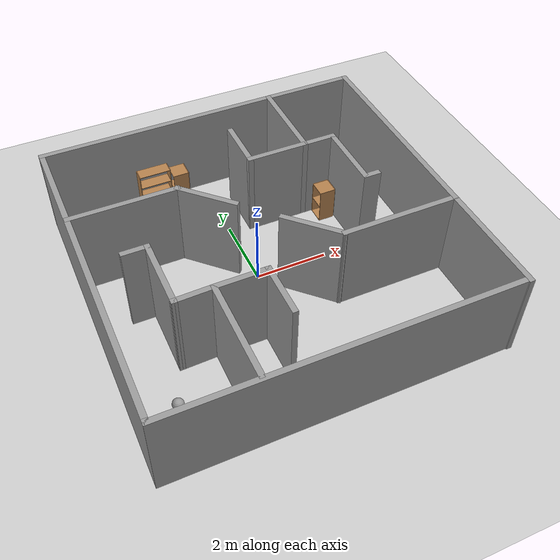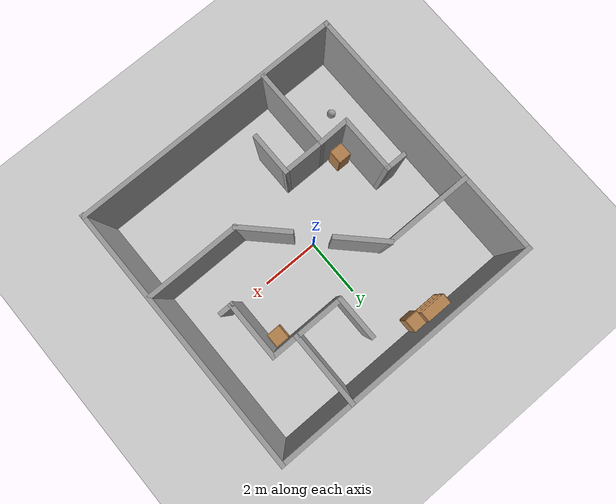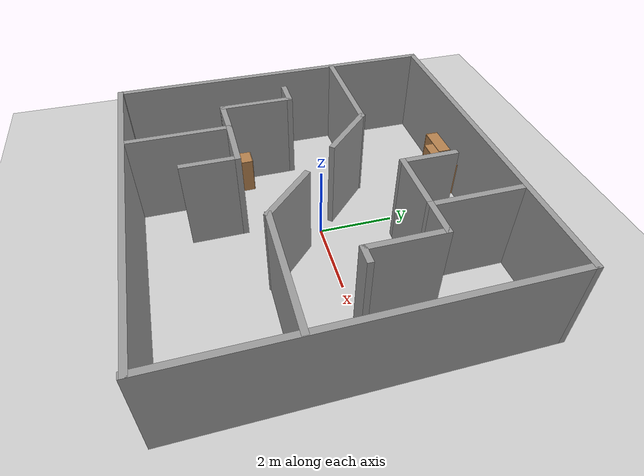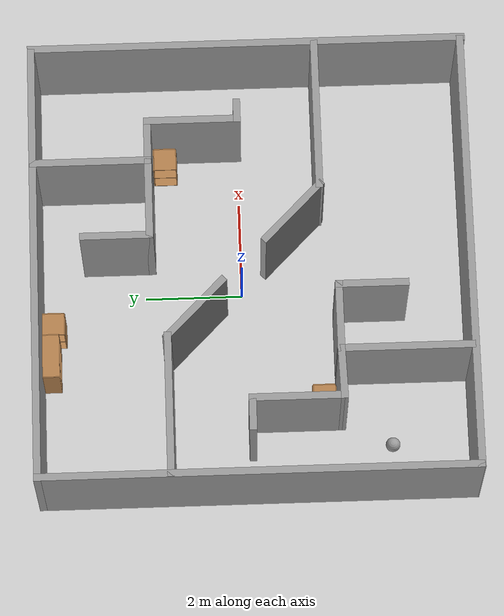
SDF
<sdf version="1.6">
 <world name="default">
  <light name="sun" type="directional">
   <pose>0 0 10 0 -0 0</pose>
   <diffuse>0.8 0.8 0.8 1</diffuse>
   <specular>0.2 0.2 0.2 1</specular>
   <attenuation>
    <range>1000</range>
    <constant>0.9</constant>
    <linear>0.01</linear>
    <quadratic>0.001</quadratic>
   </attenuation>
   <direction>-0.5 0.1 -0.9</direction>
  </light>
  <model name="ground_plane">
   <static>1</static>
   <link name="link">
    <collision name="collision">
     <geometry><plane><normal>0 0 1</normal><size>100 100</size></plane></geometry>
     <surface>
      <contact><collide_bitmask>65535</collide_bitmask></contact>
      <friction><ode><mu>100</mu><mu2>50</mu2></ode></friction>
     </surface>
    </collision>
    <visual name="visual">
     <cast_shadows>0</cast_shadows>
     <geometry><plane><normal>0 0 1</normal><size>100 100</size></plane></geometry>
     <material>
      <script><uri>file://media/materials/scripts/gazebo.material</uri><name>Gazebo/Grey</name></script>
     </material>
    </visual>
   </link>
  </model>
  <gravity>0 0 -9.8</gravity>
  <magnetic_field>6e-06 2.3e-05 -4.2e-05</magnetic_field>
  <atmosphere type="adiabatic"/>
  <physics name="default_physics" default="0" type="ode">
   <max_step_size>0.001</max_step_size>
   <real_time_factor>1</real_time_factor>
   <real_time_update_rate>1000</real_time_update_rate>
  </physics>
  <scene><ambient>0.4 0.4 0.4 1</ambient><background>0.7 0.7 0.7 1</background><shadows>1</shadows></scene>
  <audio><device>default</device></audio>
  <spherical_coordinates>
   <surface_model>EARTH_WGS84</surface_model>
   <latitude_deg>0</latitude_deg>
   <longitude_deg>0</longitude_deg>
   <elevation>0</elevation>
   <heading_deg>0</heading_deg>
  </spherical_coordinates>
  <model name="indoor_2">
   <pose>0.161324 -0.233655 0 0 -0 0</pose>
   <link name="Wall_34">
    <collision name="Wall_34_Collision">
     <geometry><box><size>9.25 0.15 2.5</size></box></geometry>
     <pose>0 0 1.25 0 -0 0</pose>
    </collision>
    <visual name="Wall_34_Visual">
     <pose>0 0 1.25 0 -0 0</pose>
     <geometry><box><size>9.25 0.15 2.5</size></box></geometry>
     <material>
      <script><uri>file://media/materials/scripts/gazebo.material</uri><name>Gazebo/Grey</name></script>
      <ambient>1 1 1 1</ambient>
     </material>
     <meta><layer>0</layer></meta>
    </visual>
    <pose>0 -4.4197 0 0 -0 0</pose>
   </link>
   <link name="Wall_35">
    <collision name="Wall_35_Collision">
     <geometry><box><size>9.0426 0.15 2.5</size></box></geometry>
     <pose>0 0 1.25 0 -0 0</pose>
    </collision>
    <visual name="Wall_35_Visual">
     <pose>0 0 1.25 0 -0 0</pose>
     <geometry><box><size>9.0426 0.15 2.5</size></box></geometry>
     <material>
      <script><uri>file://media/materials/scripts/gazebo.material</uri><name>Gazebo/Grey</name></script>
      <ambient>1 1 1 1</ambient>
     </material>
     <meta><layer>0</layer></meta>
    </visual>
    <pose>4.55 0 0 0 -0 1.5708</pose>
   </link>
   <link name="Wall_36">
    <collision name="Wall_36_Collision">
     <geometry><box><size>9.25 0.15 2.5</size></box></geometry>
     <pose>0 0 1.25 0 -0 0</pose>
    </collision>
    <visual name="Wall_36_Visual">
     <pose>0 0 1.25 0 -0 0</pose>
     <geometry><box><size>9.25 0.15 2.5</size></box></geometry>
     <material>
      <script><uri>file://media/materials/scripts/gazebo.material</uri><name>Gazebo/Grey</name></script>
      <ambient>1 1 1 1</ambient>
     </material>
     <meta><layer>0</layer></meta>
    </visual>
    <pose>0 4.4463 0 0 -0 3.14159</pose>
   </link>
   <link name="Wall_37">
    <collision name="Wall_37_Collision">
     <geometry><box><size>9 0.15 2.5</size></box></geometry>
     <pose>0 0 1.25 0 -0 0</pose>
    </collision>
    <visual name="Wall_37_Visual">
     <pose>0 0 1.25 0 -0 0</pose>
     <geometry><box><size>9 0.15 2.5</size></box></geometry>
     <material>
      <script><uri>file://media/materials/scripts/gazebo.material</uri><name>Gazebo/Grey</name></script>
      <ambient>1 1 1 1</ambient>
     </material>
     <meta><layer>0</layer></meta>
    </visual>
    <pose>-4.55 0.021301 0 0 -0 -1.5708</pose>
   </link>
   <link name="Wall_38">
    <collision name="Wall_38_Collision">
     <geometry><box><size>0.15 0.15 2.5</size></box></geometry>
     <pose>0 0 1.25 0 -0 0</pose>
    </collision>
    <visual name="Wall_38_Visual">
     <pose>0 0 1.25 0 -0 0</pose>
     <geometry><box><size>0.15 0.15 2.5</size></box></geometry>
     <material>
      <script><uri>file://media/materials/scripts/gazebo.material</uri><name>Gazebo/Grey</name></script>
      <ambient>1 1 1 1</ambient>
     </material>
     <meta><layer>0</layer></meta>
    </visual>
    <pose>-4.55 -4.4037 0 0 -0 0</pose>
   </link>
   <link name="Wall_40">
    <collision name="Wall_40_Collision">
     <geometry><box><size>2.5 0.15 2.5</size></box></geometry>
     <pose>0 0 1.25 0 -0 0</pose>
    </collision>
    <visual name="Wall_40_Visual">
     <pose>0 0 1.25 0 -0 0</pose>
     <geometry><box><size>2.5 0.15 2.5</size></box></geometry>
     <material>
      <script><uri>file://media/materials/scripts/gazebo.material</uri><name>Gazebo/Grey</name></script>
      <ambient>1 1 1 1</ambient>
     </material>
     <meta><layer>0</layer></meta>
    </visual>
    <pose>2.05745 3.26316 0 0 -0 -1.5708</pose>
   </link>
   <link name="Wall_41">
    <collision name="Wall_41_Collision">
     <geometry><box><size>1 0.15 2.5</size></box></geometry>
     <pose>0 0 1.25 0 -0 0</pose>
    </collision>
    <visual name="Wall_41_Visual">
     <pose>0 0 1.25 0 -0 0</pose>
     <geometry><box><size>1 0.15 2.5</size></box></geometry>
     <material>
      <script><uri>file://media/materials/scripts/gazebo.material</uri><name>Gazebo/Grey</name></script>
      <ambient>1 1 1 1</ambient>
     </material>
     <meta><layer>0</layer></meta>
    </visual>
    <pose>2.48245 2.08817 0 0 -0 0</pose>
   </link>
   <link name="Wall_42">
    <collision name="Wall_42_Collision">
     <geometry><box><size>2 0.15 2.5</size></box></geometry>
     <pose>0 0 1.25 0 -0 0</pose>
    </collision>
    <visual name="Wall_42_Visual">
     <pose>0 0 1.25 0 -0 0</pose>
     <geometry><box><size>2 0.15 2.5</size></box></geometry>
     <material>
      <script><uri>file://media/materials/scripts/gazebo.material</uri><name>Gazebo/Grey</name></script>
      <ambient>1 1 1 1</ambient>
     </material>
     <meta><layer>0</layer></meta>
    </visual>
    <pose>2.90745 1.16317 0 0 -0 -1.5708</pose>
   </link>
   <link name="Wall_43">
    <collision name="Wall_43_Collision">
     <geometry><box><size>0.5 0.15 2.5</size></box></geometry>
     <pose>0 0 1.25 0 -0 0</pose>
    </collision>
    <visual name="Wall_43_Visual">
     <pose>0 0 1.25 0 -0 0</pose>
     <geometry><box><size>0.5 0.15 2.5</size></box></geometry>
     <material>
      <script><uri>file://media/materials/scripts/gazebo.material</uri><name>Gazebo/Grey</name></script>
      <ambient>1 1 1 1</ambient>
     </material>
     <meta><layer>0</layer></meta>
    </visual>
    <pose>3.08245 0.238165 0 0 -0 0</pose>
   </link>
   <link name="Wall_45">
    <collision name="Wall_45_Collision">
     <geometry><box><size>1.75 0.15 2.5</size></box></geometry>
     <pose>0 0 1.25 0 -0 0</pose>
    </collision>
    <visual name="Wall_45_Visual">
     <pose>0 0 1.25 0 -0 0</pose>
     <geometry><box><size>1.75 0.15 2.5</size></box></geometry>
     <material>
      <script><uri>file://media/materials/scripts/gazebo.material</uri><name>Gazebo/Grey</name></script>
      <ambient>1 1 1 1</ambient>
     </material>
     <meta><layer>0</layer></meta>
    </visual>
    <pose>1.25745 2.08817 0 0 -0 3.14159</pose>
   </link>
   <link name="Wall_46">
    <collision name="Wall_46_Collision">
     <geometry><box><size>1.5 0.15 2.5</size></box></geometry>
     <pose>0 0 1.25 0 -0 0</pose>
    </collision>
    <visual name="Wall_46_Visual">
     <pose>0 0 1.25 0 -0 0</pose>
     <geometry><box><size>1.5 0.15 2.5</size></box></geometry>
     <material>
      <script><uri>file://media/materials/scripts/gazebo.material</uri><name>Gazebo/Grey</name></script>
      <ambient>1 1 1 1</ambient>
     </material>
     <meta><layer>0</layer></meta>
    </visual>
    <pose>0.457448 2.76316 0 0 -0 1.5708</pose>
   </link>
   <link name="Wall_48">
    <collision name="Wall_48_Collision">
     <geometry><box><size>2.75 0.15 2.5</size></box></geometry>
     <pose>0 0 1.25 0 -0 0</pose>
    </collision>
    <visual name="Wall_48_Visual">
     <pose>0 0 1.25 0 -0 0</pose>
     <geometry><box><size>2.75 0.15 2.5</size></box></geometry>
     <material>
      <script><uri>file://media/materials/scripts/gazebo.material</uri><name>Gazebo/Grey</name></script>
      <ambient>1 1 1 1</ambient>
     </material>
     <meta><layer>0</layer></meta>
    </visual>
    <pose>-2.06558 -3.0399 0 0 -0 1.5708</pose>
   </link>
   <link name="Wall_49">
    <collision name="Wall_49_Collision">
     <geometry><box><size>1.12277 0.15 2.5</size></box></geometry>
     <pose>0 0 1.25 0 -0 0</pose>
    </collision>
    <visual name="Wall_49_Visual">
     <pose>0 0 1.25 0 -0 0</pose>
     <geometry><box><size>1.12277 0.15 2.5</size></box></geometry>
     <material>
      <script><uri>file://media/materials/scripts/gazebo.material</uri><name>Gazebo/Grey</name></script>
      <ambient>1 1 1 1</ambient>
     </material>
     <meta><layer>0</layer></meta>
    </visual>
    <pose>-2.55179 -1.7266 0 0 -0 -3.11424</pose>
   </link>
   <link name="Wall_50">
    <collision name="Wall_50_Collision">
     <geometry><box><size>2 0.15 2.5</size></box></geometry>
     <pose>0 0 1.25 0 -0 0</pose>
    </collision>
    <visual name="Wall_50_Visual">
     <pose>0 0 1.25 0 -0 0</pose>
     <geometry><box><size>2 0.15 2.5</size></box></geometry>
     <material>
      <script><uri>file://media/materials/scripts/gazebo.material</uri><name>Gazebo/Grey</name></script>
      <ambient>1 1 1 1</ambient>
     </material>
     <meta><layer>0</layer></meta>
    </visual>
    <pose>-3.03799 -0.8149 0 0 -0 1.5708</pose>
   </link>
   <link name="Wall_51">
    <collision name="Wall_51_Collision">
     <geometry><box><size>0.75 0.15 2.5</size></box></geometry>
     <pose>0 0 1.25 0 -0 0</pose>
    </collision>
    <visual name="Wall_51_Visual">
     <pose>0 0 1.25 0 -0 0</pose>
     <geometry><box><size>0.75 0.15 2.5</size></box></geometry>
     <material>
      <script><uri>file://media/materials/scripts/gazebo.material</uri><name>Gazebo/Grey</name></script>
      <ambient>1 1 1 1</ambient>
     </material>
     <meta><layer>0</layer></meta>
    </visual>
    <pose>-3.33799 0.1101 0 0 -0 3.14159</pose>
   </link>
   <link name="Wall_53">
    <collision name="Wall_53_Collision">
     <geometry><box><size>3 0.15 2.5</size></box></geometry>
     <pose>0 0 1.25 0 -0 0</pose>
    </collision>
    <visual name="Wall_53_Visual">
     <pose>0 0 1.25 0 -0 0</pose>
     <geometry><box><size>3 0.15 2.5</size></box></geometry>
     <material>
      <script><uri>file://media/materials/scripts/gazebo.material</uri><name>Gazebo/Grey</name></script>
      <ambient>1 1 1 1</ambient>
     </material>
     <meta><layer>0</layer></meta>
    </visual>
    <pose>-3.1144 1.77815 0 0 -0 0</pose>
   </link>
   <link name="Wall_54">
    <collision name="Wall_54_Collision">
     <geometry><box><size>1.75 0.15 2.5</size></box></geometry>
     <pose>0 0 1.25 0 -0 0</pose>
    </collision>
    <visual name="Wall_54_Visual">
     <pose>0 0 1.25 0 -0 0</pose>
     <geometry><box><size>1.75 0.15 2.5</size></box></geometry>
     <material>
      <script><uri>file://media/materials/scripts/gazebo.material</uri><name>Gazebo/Grey</name></script>
      <ambient>1 1 1 1</ambient>
     </material>
     <meta><layer>0</layer></meta>
    </visual>
    <pose>-1.12372 1.21246 0 0 -0 -0.785398</pose>
   </link>
   <link name="Wall_56">
    <collision name="Wall_56_Collision">
     <geometry><box><size>1.75 0.15 2.5</size></box></geometry>
     <pose>0 0 1.25 0 -0 0</pose>
    </collision>
    <visual name="Wall_56_Visual">
     <pose>0 0 1.25 0 -0 0</pose>
     <geometry><box><size>1.75 0.15 2.5</size></box></geometry>
     <material>
      <script><uri>file://media/materials/scripts/gazebo.material</uri><name>Gazebo/Grey</name></script>
      <ambient>1 1 1 1</ambient>
     </material>
     <meta><layer>0</layer></meta>
    </visual>
    <pose>0.86752 -0.835755 0 0 -0 -0.785398</pose>
   </link>
   <link name="Wall_57">
    <collision name="Wall_57_Collision">
     <geometry><box><size>3.25 0.15 2.5</size></box></geometry>
     <pose>0 0 1.25 0 -0 0</pose>
    </collision>
    <visual name="Wall_57_Visual">
     <pose>0 0 1.25 0 -0 0</pose>
     <geometry><box><size>3.25 0.15 2.5</size></box></geometry>
     <material>
      <script><uri>file://media/materials/scripts/gazebo.material</uri><name>Gazebo/Grey</name></script>
      <ambient>1 1 1 1</ambient>
     </material>
     <meta><layer>0</layer></meta>
    </visual>
    <pose>2.9832 -1.40144 0 0 -0 0</pose>
   </link>
   <link name="Wall_59">
    <collision name="Wall_59_Collision">
     <geometry><box><size>1.5 0.15 2.5</size></box></geometry>
     <pose>0 0 1.25 0 -0 0</pose>
    </collision>
    <visual name="Wall_59_Visual">
     <pose>0 0 1.25 0 -0 0</pose>
     <geometry><box><size>1.5 0.15 2.5</size></box></geometry>
     <material>
      <script><uri>file://media/materials/scripts/gazebo.material</uri><name>Gazebo/Grey</name></script>
      <ambient>1 1 1 1</ambient>
     </material>
     <meta><layer>0</layer></meta>
    </visual>
    <pose>-1.39058 -1.7133 0 0 -0 0</pose>
   </link>
   <link name="Wall_60">
    <collision name="Wall_60_Collision">
     <geometry><box><size>1.5 0.15 2.5</size></box></geometry>
     <pose>0 0 1.25 0 -0 0</pose>
    </collision>
    <visual name="Wall_60_Visual">
     <pose>0 0 1.25 0 -0 0</pose>
     <geometry><box><size>1.5 0.15 2.5</size></box></geometry>
     <material>
      <script><uri>file://media/materials/scripts/gazebo.material</uri><name>Gazebo/Grey</name></script>
      <ambient>1 1 1 1</ambient>
     </material>
     <meta><layer>0</layer></meta>
    </visual>
    <pose>-0.715583 -2.3883 0 0 -0 -1.5708</pose>
   </link>
   <static>1</static>
  </model>
  <model name="bookshelf">
   <static>1</static>
   <link name="link">
    <inertial><mass>1</mass></inertial>
    <collision name="back">
     <pose>0 0.005 0.6 0 -0 0</pose>
     <geometry><box><size>0.9 0.01 1.2</size></box></geometry>
    </collision>
    <visual name="visual1">
     <pose>0 0.005 0.6 0 -0 0</pose>
     <geometry><box><size>0.9 0.01 1.2</size></box></geometry>
     <material>
      <script><uri>file://media/materials/scripts/gazebo.material</uri><name>Gazebo/Wood</name></script>
     </material>
    </visual>
    <collision name="left_side">
     <pose>0.45 -0.195 0.6 0 -0 0</pose>
     <geometry><box><size>0.02 0.4 1.2</size></box></geometry>
    </collision>
    <visual name="visual2">
     <pose>0.45 -0.195 0.6 0 -0 0</pose>
     <geometry><box><size>0.02 0.4 1.2</size></box></geometry>
     <material>
      <script><uri>file://media/materials/scripts/gazebo.material</uri><name>Gazebo/Wood</name></script>
     </material>
    </visual>
    <collision name="right_side">
     <pose>-0.45 -0.195 0.6 0 -0 0</pose>
     <geometry><box><size>0.02 0.4 1.2</size></box></geometry>
    </collision>
    <visual name="visual3">
     <pose>-0.45 -0.195 0.6 0 -0 0</pose>
     <geometry><box><size>0.02 0.4 1.2</size></box></geometry>
     <material>
      <script><uri>file://media/materials/scripts/gazebo.material</uri><name>Gazebo/Wood</name></script>
     </material>
    </visual>
    <collision name="bottom">
     <pose>0 -0.195 0.03 0 -0 0</pose>
     <geometry><box><size>0.88 0.4 0.06</size></box></geometry>
    </collision>
    <visual name="visual4">
     <pose>0 -0.195 0.03 0 -0 0</pose>
     <geometry><box><size>0.88 0.4 0.06</size></box></geometry>
     <material>
      <script><uri>file://media/materials/scripts/gazebo.material</uri><name>Gazebo/Wood</name></script>
     </material>
    </visual>
    <collision name="top">
     <pose>0 -0.195 1.19 0 -0 0</pose>
     <geometry><box><size>0.88 0.4 0.02</size></box></geometry>
    </collision>
    <visual name="visual5">
     <pose>0 -0.195 1.19 0 -0 0</pose>
     <geometry><box><size>0.88 0.4 0.02</size></box></geometry>
     <material>
      <script><uri>file://media/materials/scripts/gazebo.material</uri><name>Gazebo/Wood</name></script>
     </material>
    </visual>
    <collision name="low_shelf">
     <pose>0 -0.195 0.43 0 -0 0</pose>
     <geometry><box><size>0.88 0.4 0.02</size></box></geometry>
    </collision>
    <visual name="visual6">
     <pose>0 -0.195 0.43 0 -0 0</pose>
     <geometry><box><size>0.88 0.4 0.02</size></box></geometry>
     <material>
      <script><uri>file://media/materials/scripts/gazebo.material</uri><name>Gazebo/Wood</name></script>
     </material>
    </visual>
    <collision name="high_shelf">
     <pose>0 -0.195 0.8 0 -0 0</pose>
     <geometry><box><size>0.88 0.4 0.02</size></box></geometry>
    </collision>
    <visual name="visual7">
     <pose>0 -0.195 0.8 0 -0 0</pose>
     <geometry><box><size>0.88 0.4 0.02</size></box></geometry>
     <material>
      <script><uri>file://media/materials/scripts/gazebo.material</uri><name>Gazebo/Wood</name></script>
     </material>
    </visual>
   </link>
   <pose>-1.50439 4.18498 0 0 -0 0</pose>
  </model>
  <model name="cabinet">
   <static>1</static>
   <link name="cabinet_bottom_plate">
    <inertial>
     <pose>0 0 -1 0 -0 0</pose>
     <inertia><ixx>2.05</ixx><ixy>0</ixy><ixz>0</ixz><iyy>2.05</iyy><iyz>0</iyz><izz>2.05</izz></inertia>
     <mass>25</mass>
    </inertial>
    <collision name="cabinet_bottom_plate_geom">
     <pose>0 0 0.01 0 -0 0</pose>
     <geometry><box><size>0.45 0.45 0.02</size></box></geometry>
    </collision>
    <visual name="cabinet_bottom_plate_geom_visual">
     <pose>0 0 0.01 0 -0 0</pose>
     <geometry><box><size>0.45 0.45 0.02</size></box></geometry>
     <material>
      <script><uri>file://media/materials/scripts/gazebo.material</uri><name>Gazebo/Wood</name></script>
     </material>
    </visual>
    <collision name="cabinet_bottom_plate_geom_cabinet_back_plate">
     <pose>0.235 0 0.51 0 -0 0</pose>
     <geometry><box><size>0.02 0.45 1.02</size></box></geometry>
    </collision>
    <visual name="cabinet_bottom_plate_geom_cabinet_back_plate_visual">
     <pose>0.235 0 0.51 0 -0 0</pose>
     <geometry><box><size>0.02 0.45 1.02</size></box></geometry>
     <material>
      <script><uri>file://media/materials/scripts/gazebo.material</uri><name>Gazebo/Wood</name></script>
     </material>
    </visual>
    <collision name="cabinet_bottom_plate_geom_cabinet_left_plate">
     <pose>0 0.235 0.51 0 -0 0</pose>
     <geometry><box><size>0.45 0.02 1.02</size></box></geometry>
    </collision>
    <visual name="cabinet_bottom_plate_geom_cabinet_left_plate_visual">
     <pose>0 0.235 0.51 0 -0 0</pose>
     <geometry><box><size>0.45 0.02 1.02</size></box></geometry>
     <material>
      <script><uri>file://media/materials/scripts/gazebo.material</uri><name>Gazebo/Wood</name></script>
     </material>
    </visual>
    <collision name="cabinet_bottom_plate_geom_cabinet_middle_plate">
     <pose>0 0 0.51 0 -0 0</pose>
     <geometry><box><size>0.45 0.45 0.02</size></box></geometry>
    </collision>
    <visual name="cabinet_bottom_plate_geom_cabinet_middle_plate_visual">
     <pose>0 0 0.51 0 -0 0</pose>
     <geometry><box><size>0.45 0.45 0.02</size></box></geometry>
     <material>
      <script><uri>file://media/materials/scripts/gazebo.material</uri><name>Gazebo/Wood</name></script>
     </material>
    </visual>
    <collision name="cabinet_bottom_plate_geom_cabinet_right_plate">
     <pose>0 -0.235 0.51 0 -0 0</pose>
     <geometry><box><size>0.45 0.02 1.02</size></box></geometry>
    </collision>
    <visual name="cabinet_bottom_plate_geom_cabinet_right_plate_visual">
     <pose>0 -0.235 0.51 0 -0 0</pose>
     <geometry><box><size>0.45 0.02 1.02</size></box></geometry>
     <material>
      <script><uri>file://media/materials/scripts/gazebo.material</uri><name>Gazebo/Wood</name></script>
     </material>
    </visual>
    <collision name="cabinet_bottom_plate_geom_cabinet_top_plate">
     <pose>0 0 1.01 0 -0 0</pose>
     <geometry><box><size>0.45 0.45 0.02</size></box></geometry>
    </collision>
    <visual name="cabinet_bottom_plate_geom_cabinet_top_plate_visual">
     <pose>0 0 1.01 0 -0 0</pose>
     <geometry><box><size>0.45 0.45 0.02</size></box></geometry>
     <material>
      <script><uri>file://media/materials/scripts/gazebo.material</uri><name>Gazebo/Wood</name></script>
     </material>
    </visual>
   </link>
   <pose>-0.784053 3.91345 0 0 -0 0</pose>
  </model>
  <model name="cabinet_0">
   <static>1</static>
   <link name="cabinet_bottom_plate">
    <inertial>
     <pose>0 0 -1 0 -0 0</pose>
     <inertia><ixx>2.05</ixx><ixy>0</ixy><ixz>0</ixz><iyy>2.05</iyy><iyz>0</iyz><izz>2.05</izz></inertia>
     <mass>25</mass>
    </inertial>
    <collision name="cabinet_bottom_plate_geom">
     <pose>0 0 0.01 0 -0 0</pose>
     <geometry><box><size>0.45 0.45 0.02</size></box></geometry>
    </collision>
    <visual name="cabinet_bottom_plate_geom_visual">
     <pose>0 0 0.01 0 -0 0</pose>
     <geometry><box><size>0.45 0.45 0.02</size></box></geometry>
     <material>
      <script><uri>file://media/materials/scripts/gazebo.material</uri><name>Gazebo/Wood</name></script>
     </material>
    </visual>
    <collision name="cabinet_bottom_plate_geom_cabinet_back_plate">
     <pose>0.235 0 0.51 0 -0 0</pose>
     <geometry><box><size>0.02 0.45 1.02</size></box></geometry>
    </collision>
    <visual name="cabinet_bottom_plate_geom_cabinet_back_plate_visual">
     <pose>0.235 0 0.51 0 -0 0</pose>
     <geometry><box><size>0.02 0.45 1.02</size></box></geometry>
     <material>
      <script><uri>file://media/materials/scripts/gazebo.material</uri><name>Gazebo/Wood</name></script>
     </material>
    </visual>
    <collision name="cabinet_bottom_plate_geom_cabinet_left_plate">
     <pose>0 0.235 0.51 0 -0 0</pose>
     <geometry><box><size>0.45 0.02 1.02</size></box></geometry>
    </collision>
    <visual name="cabinet_bottom_plate_geom_cabinet_left_plate_visual">
     <pose>0 0.235 0.51 0 -0 0</pose>
     <geometry><box><size>0.45 0.02 1.02</size></box></geometry>
     <material>
      <script><uri>file://media/materials/scripts/gazebo.material</uri><name>Gazebo/Wood</name></script>
     </material>
    </visual>
    <collision name="cabinet_bottom_plate_geom_cabinet_middle_plate">
     <pose>0 0 0.51 0 -0 0</pose>
     <geometry><box><size>0.45 0.45 0.02</size></box></geometry>
    </collision>
    <visual name="cabinet_bottom_plate_geom_cabinet_middle_plate_visual">
     <pose>0 0 0.51 0 -0 0</pose>
     <geometry><box><size>0.45 0.45 0.02</size></box></geometry>
     <material>
      <script><uri>file://media/materials/scripts/gazebo.material</uri><name>Gazebo/Wood</name></script>
     </material>
    </visual>
    <collision name="cabinet_bottom_plate_geom_cabinet_right_plate">
     <pose>0 -0.235 0.51 0 -0 0</pose>
     <geometry><box><size>0.45 0.02 1.02</size></box></geometry>
    </collision>
    <visual name="cabinet_bottom_plate_geom_cabinet_right_plate_visual">
     <pose>0 -0.235 0.51 0 -0 0</pose>
     <geometry><box><size>0.45 0.02 1.02</size></box></geometry>
     <material>
      <script><uri>file://media/materials/scripts/gazebo.material</uri><name>Gazebo/Wood</name></script>
     </material>
    </visual>
    <collision name="cabinet_bottom_plate_geom_cabinet_top_plate">
     <pose>0 0 1.01 0 -0 0</pose>
     <geometry><box><size>0.45 0.45 0.02</size></box></geometry>
    </collision>
    <visual name="cabinet_bottom_plate_geom_cabinet_top_plate_visual">
     <pose>0 0 1.01 0 -0 0</pose>
     <geometry><box><size>0.45 0.45 0.02</size></box></geometry>
     <material>
      <script><uri>file://media/materials/scripts/gazebo.material</uri><name>Gazebo/Wood</name></script>
     </material>
    </visual>
   </link>
   <pose>2.72973 1.52679 0 0 -0 0</pose>
  </model>
  <model name="cabinet_1">
   <static>1</static>
   <link name="cabinet_bottom_plate">
    <inertial>
     <pose>0 0 -1 0 -0 0</pose>
     <inertia><ixx>2.05</ixx><ixy>0</ixy><ixz>0</ixz><iyy>2.05</iyy><iyz>0</iyz><izz>2.05</izz></inertia>
     <mass>25</mass>
    </inertial>
    <collision name="cabinet_bottom_plate_geom">
     <pose>0 0 0.01 0 -0 0</pose>
     <geometry><box><size>0.45 0.45 0.02</size></box></geometry>
    </collision>
    <visual name="cabinet_bottom_plate_geom_visual">
     <pose>0 0 0.01 0 -0 0</pose>
     <geometry><box><size>0.45 0.45 0.02</size></box></geometry>
     <material>
      <script><uri>file://media/materials/scripts/gazebo.material</uri><name>Gazebo/Wood</name></script>
     </material>
    </visual>
    <collision name="cabinet_bottom_plate_geom_cabinet_back_plate">
     <pose>0.235 0 0.51 0 -0 0</pose>
     <geometry><box><size>0.02 0.45 1.02</size></box></geometry>
    </collision>
    <visual name="cabinet_bottom_plate_geom_cabinet_back_plate_visual">
     <pose>0.235 0 0.51 0 -0 0</pose>
     <geometry><box><size>0.02 0.45 1.02</size></box></geometry>
     <material>
      <script><uri>file://media/materials/scripts/gazebo.material</uri><name>Gazebo/Wood</name></script>
     </material>
    </visual>
    <collision name="cabinet_bottom_plate_geom_cabinet_left_plate">
     <pose>0 0.235 0.51 0 -0 0</pose>
     <geometry><box><size>0.45 0.02 1.02</size></box></geometry>
    </collision>
    <visual name="cabinet_bottom_plate_geom_cabinet_left_plate_visual">
     <pose>0 0.235 0.51 0 -0 0</pose>
     <geometry><box><size>0.45 0.02 1.02</size></box></geometry>
     <material>
      <script><uri>file://media/materials/scripts/gazebo.material</uri><name>Gazebo/Wood</name></script>
     </material>
    </visual>
    <collision name="cabinet_bottom_plate_geom_cabinet_middle_plate">
     <pose>0 0 0.51 0 -0 0</pose>
     <geometry><box><size>0.45 0.45 0.02</size></box></geometry>
    </collision>
    <visual name="cabinet_bottom_plate_geom_cabinet_middle_plate_visual">
     <pose>0 0 0.51 0 -0 0</pose>
     <geometry><box><size>0.45 0.45 0.02</size></box></geometry>
     <material>
      <script><uri>file://media/materials/scripts/gazebo.material</uri><name>Gazebo/Wood</name></script>
     </material>
    </visual>
    <collision name="cabinet_bottom_plate_geom_cabinet_right_plate">
     <pose>0 -0.235 0.51 0 -0 0</pose>
     <geometry><box><size>0.45 0.02 1.02</size></box></geometry>
    </collision>
    <visual name="cabinet_bottom_plate_geom_cabinet_right_plate_visual">
     <pose>0 -0.235 0.51 0 -0 0</pose>
     <geometry><box><size>0.45 0.02 1.02</size></box></geometry>
     <material>
      <script><uri>file://media/materials/scripts/gazebo.material</uri><name>Gazebo/Wood</name></script>
     </material>
    </visual>
    <collision name="cabinet_bottom_plate_geom_cabinet_top_plate">
     <pose>0 0 1.01 0 -0 0</pose>
     <geometry><box><size>0.45 0.45 0.02</size></box></geometry>
    </collision>
    <visual name="cabinet_bottom_plate_geom_cabinet_top_plate_visual">
     <pose>0 0 1.01 0 -0 0</pose>
     <geometry><box><size>0.45 0.45 0.02</size></box></geometry>
     <material>
      <script><uri>file://media/materials/scripts/gazebo.material</uri><name>Gazebo/Wood</name></script>
     </material>
    </visual>
   </link>
   <pose>-2.47795 -1.61552 0 0 -0 0</pose>
  </model>
  <model name="Sphere_radius_15cm">
   <link name="link">
    <inertial>
     <mass>1</mass>
     <inertia><ixx>0.1</ixx><ixy>0</ixy><ixz>0</ixz><iyy>0.1</iyy><iyz>0</iyz><izz>0.1</izz></inertia>
    </inertial>
    <visual name="visual">
     <geometry><sphere><radius>0.15</radius></sphere></geometry>
     <material>
      <script><name>Gazebo/Grey</name><uri>file://media/materials/scripts/gazebo.material</uri></script>
      <shader type="vertex"><normal_map>__default__</normal_map></shader>
      <ambient>0.3 0.3 0.3 1</ambient>
      <diffuse>0.7 0.7 0.7 1</diffuse>
      <specular>0.01 0.01 0.01 1</specular>
      <emissive>0 0 0 1</emissive>
     </material>
    </visual>
    <collision name="collision">
     <geometry><sphere><radius>0.15</radius></sphere></geometry>
     <surface>
      <friction>
       <ode><mu>1</mu><mu2>1</mu2><fdir1>0 0 0</fdir1><slip1>0</slip1><slip2>0</slip2></ode>
       <torsional>
        <coefficient>1</coefficient>
        <patch_radius>0</patch_radius>
        <surface_radius>0</surface_radius>
        <use_patch_radius>1</use_patch_radius>
        <ode><slip>0</slip></ode>
       </torsional>
      </friction>
      <bounce><restitution_coefficient>0</restitution_coefficient><threshold>1e+06</threshold></bounce>
      <contact>
       <collide_without_contact>0</collide_without_contact>
       <collide_without_contact_bitmask>1</collide_without_contact_bitmask>
       <collide_bitmask>1</collide_bitmask>
       <ode>
        <soft_cfm>0</soft_cfm>
        <soft_erp>0.2</soft_erp>
        <kp>1e+13</kp>
        <kd>1</kd>
        <max_vel>0.01</max_vel>
        <min_depth>0</min_depth>
       </ode>
       <bullet>
        <split_impulse>1</split_impulse>
        <split_impulse_penetration_threshold>-0.01</split_impulse_penetration_threshold>
        <soft_cfm>0</soft_cfm>
        <soft_erp>0.2</soft_erp>
        <kp>1e+13</kp>
        <kd>1</kd>
       </bullet>
      </contact>
     </surface>
    </collision>
   </link>
   <static>0</static>
   <pose>-3.33541 -3.00834 0.15 0 -0 0</pose>
  </model>
 </world>
</sdf>
